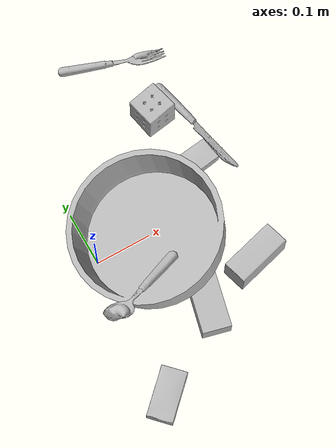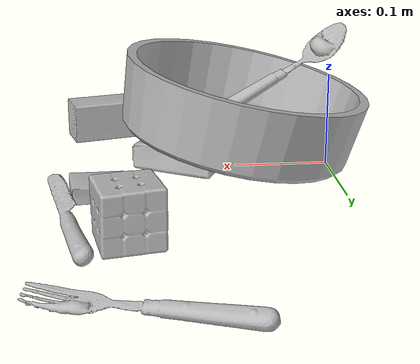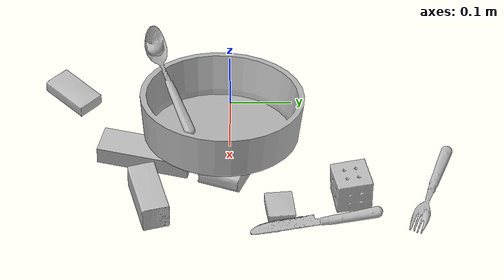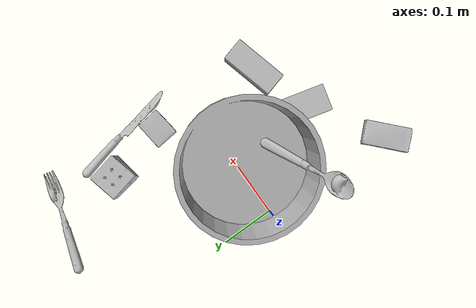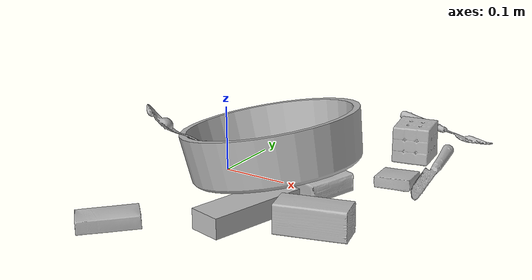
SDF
<sdf version="1.4">
  <world name="default">
    <light name="light1" type="point">
      <pose>0 0 1 0 0 0</pose>
      <diffuse>3 3 3 1</diffuse>
      <specular>3 3 3 1</specular>
    </light>
    <light name="light2" type="point">
      <pose>0 0.5 2 0 0 0</pose>
      <diffuse>1 1 1 1</diffuse>
      <specular>1 1 1 1</specular>
    </light>
    <light name="light3" type="point">
      <pose>0 0.5 2 0 0 0</pose>
      <diffuse>3 3 3 1</diffuse>
      <specular>3 3 3 1</specular>
    </light>
    <scene>
      <ambient>0.7 0.7 0.7</ambient>
    </scene>
    <model name="box11">
      <link name="link_box11">
        <collision name="default">
          <geometry>
            <mesh>
              <uri>model://jenga/collision_meshes/collision.obj</uri>
              <scale>1.0 1.0 1.0</scale>
            </mesh>
          </geometry>
          <surface>
            <friction>
              <ode>
                <mu>0.5</mu>
                <mu2>0.5</mu2>
              </ode>
            </friction>
          <contact>
        <ode>
            <max_vel>0</max_vel>
            <min_depth>0.0001</min_depth>
            <kp>1e8</kp>
        </ode>
    </contact></surface>
        </collision>
        <visual name="default">
          <geometry>
            <mesh>
              <uri>model://jenga/visual_meshes/visual.dae</uri>
              <scale>1.0 1.0 1.0</scale>
            </mesh>
          </geometry>
        </visual>
        <inertial>
          <mass>0.22063912451267242</mass>
          <pose>-2.502855807051674e-07 -0.00010250011109746993 -4.0923405322246253e-05 0.0 -7.34215461761844e-07 0.0</pose>
          <inertia>
            <ixx>6.1056206e-05</ixx>
            <iyy>0.00041371517</iyy>
            <izz>0.00044167612</izz>
            <ixy>0</ixy>
            <ixz>0</ixz>
            <iyz>0</iyz>
          </inertia>
        </inertial>
      </link>
      <pose>0.12996557354927063 -0.13508932292461395 0.015000042505562305 2.8593878795694217e-05 -9.999344559551862e-06 -1.8191364349241563</pose>
    </model>
    <model name="box12">
      <link name="link_box12">
        <collision name="default">
          <geometry>
            <mesh>
              <uri>model://sugar_box/collision_meshes/collision.obj</uri>
              <scale>0.5 0.5 0.5</scale>
            </mesh>
          </geometry>
          <surface>
            <friction>
              <ode>
                <mu>0.5</mu>
                <mu2>0.5</mu2>
              </ode>
            </friction>
          <contact>
        <ode>
            <max_vel>0</max_vel>
            <min_depth>0.0001</min_depth>
            <kp>1e8</kp>
        </ode>
    </contact></surface>
        </collision>
        <visual name="default">
          <geometry>
            <mesh>
              <uri>model://sugar_box/visual_meshes/visual.dae</uri>
              <scale>0.5 0.5 0.5</scale>
            </mesh>
          </geometry>
        </visual>
        <inertial>
          <mass>0.053318966180086136</mass>
          <pose>0.0005171863595023751 1.924554817378521e-05 -0.00018182402709499002 -0.00040462627129080113 0.001050663522124822 0.0026153787889376494</pose>
          <inertia>
            <ixx>1.1106302e-05</ixx>
            <iyy>3.5897858e-05</iyy>
            <izz>4.2974014e-05</izz>
            <ixy>0</ixy>
            <ixz>0</ixz>
            <iyz>0</iyz>
          </inertia>
        </inertial>
      </link>
      <pose>-0.012071591801941395 -0.2571260631084442 0.011399299837648869 0.0007757333180383819 -0.02343293036633046 0.7547432364117445</pose>
    </model>
    <model name="box13">
      <link name="link_box13">
        <collision name="default">
          <geometry>
            <mesh>
              <uri>model://gelatin_box/collision_meshes/collision.obj</uri>
              <scale>1.0 1.0 1.0</scale>
            </mesh>
          </geometry>
          <surface>
            <friction>
              <ode>
                <mu>0.5</mu>
                <mu2>0.5</mu2>
              </ode>
            </friction>
          <contact>
        <ode>
            <max_vel>0</max_vel>
            <min_depth>0.0001</min_depth>
            <kp>1e8</kp>
        </ode>
    </contact></surface>
        </collision>
        <visual name="default">
          <geometry>
            <mesh>
              <uri>model://gelatin_box/visual_meshes/visual.dae</uri>
              <scale>1.0 1.0 1.0</scale>
            </mesh>
          </geometry>
        </visual>
        <inertial>
          <mass>0.19111748039722443</mass>
          <pose>0.0004319618456065655 0.00011156871914863586 -0.00036403207923285663 -0.0010503719765995955 -0.004755818690324038 0.01644055947160125</pose>
          <inertia>
            <ixx>0.00013491335</ixx>
            <iyy>9.63679e-05</iyy>
            <izz>0.00020536821</izz>
            <ixy>0</ixy>
            <ixz>0</ixz>
            <iyz>0</iyz>
          </inertia>
        </inertial>
      </link>
      <pose>0.1579427868127823 -0.002071450464427471 0.0169915072619915 -0.036466479614958705 -0.05294050897735819 1.1579894345604433</pose>
    </model>
    <model name="box21">
      <link name="link_box21">
        <collision name="default">
          <geometry>
            <mesh>
              <uri>model://pudding_box/collision_meshes/collision.obj</uri>
              <scale>0.5 0.5 0.5</scale>
            </mesh>
          </geometry>
          <surface>
            <friction>
              <ode>
                <mu>0.5</mu>
                <mu2>0.5</mu2>
              </ode>
            </friction>
          <contact>
        <ode>
            <max_vel>0</max_vel>
            <min_depth>0.0001</min_depth>
            <kp>1e8</kp>
        </ode>
    </contact></surface>
        </collision>
        <visual name="default">
          <geometry>
            <mesh>
              <uri>model://pudding_box/visual_meshes/visual.dae</uri>
              <scale>0.5 0.5 0.5</scale>
            </mesh>
          </geometry>
        </visual>
        <inertial>
          <mass>0.037507444620132446</mass>
          <pose>0.00024474109522998333 0.0004033942532259971 -0.0002594413817860186 0.00521310221980129 -0.006603800139852783 0.020079832606434308</pose>
          <inertia>
            <ixx>1.0600058e-05</ixx>
            <iyy>7.131795e-06</iyy>
            <izz>1.5653754e-05</izz>
            <ixy>0</ixy>
            <ixz>0</ixz>
            <iyz>0</iyz>
          </inertia>
        </inertial>
      </link>
      <pose>0.24592351913452148 0.0798671543598175 0.009862905368208885 0.022348653334110378 -0.01139170240858791 -1.4515716307362332</pose>
    </model>
    <model name="box22">
      <link name="link_box22">
        <collision name="default">
          <geometry>
            <mesh>
              <uri>model://rubiks_cube/collision_meshes/collision.obj</uri>
              <scale>1.0 1.0 1.0</scale>
            </mesh>
          </geometry>
          <surface>
            <friction>
              <ode>
                <mu>0.5</mu>
                <mu2>0.5</mu2>
              </ode>
            </friction>
          <contact>
        <ode>
            <max_vel>0</max_vel>
            <min_depth>0.0001</min_depth>
            <kp>1e8</kp>
        </ode>
    </contact></surface>
        </collision>
        <visual name="default">
          <geometry>
            <mesh>
              <uri>model://rubiks_cube/visual_meshes/visual.dae</uri>
              <scale>1.0 1.0 1.0</scale>
            </mesh>
          </geometry>
        </visual>
        <inertial>
          <mass>0.19412381947040558</mass>
          <pose>2.6721041649580002e-05 5.2569666877388954e-05 -7.264316082000732e-06 -0.05467327462967597 -0.09814157667114887 -0.034454893398498845</pose>
          <inertia>
            <ixx>0.000107266445</ixx>
            <iyy>0.0001067662</iyy>
            <izz>0.00010815532</izz>
            <ixy>0</ixy>
            <ixz>0</ixz>
            <iyz>0</iyz>
          </inertia>
        </inertial>
      </link>
      <pose>0.21700607240200043 0.1931634098291397 0.028678955510258675 -3.886910463850063e-06 -1.857926431790951e-06 0.20956198559707814</pose>
    </model>
    <model name="box23">
      <link name="link_box23">
        <collision name="default">
          <geometry>
            <mesh>
              <uri>model://wood_block/collision_meshes/collision.obj</uri>
              <scale>0.5 0.5 0.5</scale>
            </mesh>
          </geometry>
          <surface>
            <friction>
              <ode>
                <mu>0.5</mu>
                <mu2>0.5</mu2>
              </ode>
            </friction>
          <contact>
        <ode>
            <max_vel>0</max_vel>
            <min_depth>0.0001</min_depth>
            <kp>1e8</kp>
        </ode>
    </contact></surface>
        </collision>
        <visual name="default">
          <geometry>
            <mesh>
              <uri>model://wood_block/visual_meshes/visual.dae</uri>
              <scale>0.5 0.5 0.5</scale>
            </mesh>
          </geometry>
        </visual>
        <inertial>
          <mass>0.12021861970424652</mass>
          <pose>-2.9066577553749084e-06 -0.000285404734313488 0.00013204291462898254 -0.05220783851692058 -0.005192695246339916 -0.006861377900732038</pose>
          <inertia>
            <ixx>4.0217674e-05</ixx>
            <iyy>0.00012704768</iyy>
            <izz>0.00012657243</izz>
            <ixy>0</ixy>
            <ixz>0</ixz>
            <iyz>0</iyz>
          </inertia>
        </inertial>
      </link>
      <pose>0.2330896556377411 -0.12844318151474 0.022629259154200554 -0.005208544715224334 0.005718696540982294 0.2625965087587659</pose>
    </model>
    <model name="plate1">
      <link name="link_plate1">
        <collision name="default">
          <geometry>
            <mesh>
              <uri>model://pan_tefal/collision_meshes/collision.obj</uri>
              <scale>1.0 1.0 1.0</scale>
            </mesh>
          </geometry>
          <surface>
            <friction>
              <ode>
                <mu>0.5</mu>
                <mu2>0.5</mu2>
              </ode>
            </friction>
          <contact>
        <ode>
            <max_vel>0</max_vel>
            <min_depth>0.0001</min_depth>
            <kp>1e8</kp>
        </ode>
    </contact></surface>
        </collision>
        <visual name="default">
          <geometry>
            <mesh>
              <uri>model://pan_tefal/visual_meshes/visual.dae</uri>
              <scale>1.0 1.0 1.0</scale>
            </mesh>
          </geometry>
        </visual>
        <inertial>
          <mass>1.1174349784851074</mass>
          <pose>-0.0001800186582840979 3.278696021880023e-05 -0.00851493701338768 0.0008190242272949328 -0.00033013996347192336 -0.33186114310704434</pose>
          <inertia>
            <ixx>0.0077136005</ixx>
            <iyy>0.0077633304</iyy>
            <izz>0.014199255</izz>
            <ixy>0</ixy>
            <ixz>0</ixz>
            <iyz>0</iyz>
          </inertia>
        </inertial>
      </link>
      <pose>0.09299737215042114 -0.013111480511724949 0.06277908384799957 0.05662354699729594 0.2047178922148448 -3.0104606634212607</pose>
    </model>
    <model name="silverware1">
      <link name="link_silverware1">
        <collision name="default">
          <geometry>
            <mesh>
              <uri>model://spoon/collision_meshes/collision.obj</uri>
              <scale>1.0 1.0 1.0</scale>
            </mesh>
          </geometry>
          <surface>
            <friction>
              <ode>
                <mu>0.5</mu>
                <mu2>0.5</mu2>
              </ode>
            </friction>
          <contact>
        <ode>
            <max_vel>0</max_vel>
            <min_depth>0.0001</min_depth>
            <kp>1e8</kp>
        </ode>
    </contact></surface>
        </collision>
        <visual name="default">
          <geometry>
            <mesh>
              <uri>model://spoon/visual_meshes/visual.dae</uri>
              <scale>1.0 1.0 1.0</scale>
            </mesh>
          </geometry>
        </visual>
        <inertial>
          <mass>0.03790392354130745</mass>
          <pose>-0.005526311695575714 -0.0016034170985221863 -0.0007271655485965312 0.03521845899657386 -0.039065840459698326 0.006150612465639116</pose>
          <inertia>
            <ixx>2.1082776e-06</ixx>
            <iyy>0.00014422317</iyy>
            <izz>0.00014526285</izz>
            <ixy>0</ixy>
            <ixz>0</ixz>
            <iyz>0</iyz>
          </inertia>
        </inertial>
      </link>
      <pose>0.034274809062480927 -0.09879766404628754 0.08164569735527039 0.31598304468466765 -0.3902843003331303 -2.7288630224886474</pose>
    </model>
    <model name="silverware2">
      <link name="link_silverware2">
        <collision name="default">
          <geometry>
            <mesh>
              <uri>model://fork/collision_meshes/collision.obj</uri>
              <scale>1.0 1.0 1.0</scale>
            </mesh>
          </geometry>
          <surface>
            <friction>
              <ode>
                <mu>0.5</mu>
                <mu2>0.5</mu2>
              </ode>
            </friction>
          <contact>
        <ode>
            <max_vel>0</max_vel>
            <min_depth>0.0001</min_depth>
            <kp>1e8</kp>
        </ode>
    </contact></surface>
        </collision>
        <visual name="default">
          <geometry>
            <mesh>
              <uri>model://fork/visual_meshes/visual.dae</uri>
              <scale>1.0 1.0 1.0</scale>
            </mesh>
          </geometry>
        </visual>
        <inertial>
          <mass>0.029004188254475594</mass>
          <pose>-0.02957005612552166 0.0004658824182115495 0.00032188621116802096 -0.013551880215526314 -0.010977843078655252 0.014453906566097012</pose>
          <inertia>
            <ixx>1.0167608e-06</ixx>
            <iyy>7.572158e-05</iyy>
            <izz>7.617634e-05</izz>
            <ixy>0</ixy>
            <ixz>0</ixz>
            <iyz>0</iyz>
          </inertia>
        </inertial>
      </link>
      <pose>0.20447668433189392 0.32150769233703613 0.005747184623032808 -0.1910045555094969 0.024088182711441596 -0.32356651585626084</pose>
    </model>
    <model name="silverware3">
      <link name="link_silverware3">
        <collision name="default">
          <geometry>
            <mesh>
              <uri>model://knife/collision_meshes/collision.obj</uri>
              <scale>1.0 1.0 1.0</scale>
            </mesh>
          </geometry>
          <surface>
            <friction>
              <ode>
                <mu>0.5</mu>
                <mu2>0.5</mu2>
              </ode>
            </friction>
          <contact>
        <ode>
            <max_vel>0</max_vel>
            <min_depth>0.0001</min_depth>
            <kp>1e8</kp>
        </ode>
    </contact></surface>
        </collision>
        <visual name="default">
          <geometry>
            <mesh>
              <uri>model://knife/visual_meshes/visual.dae</uri>
              <scale>1.0 1.0 1.0</scale>
            </mesh>
          </geometry>
        </visual>
        <inertial>
          <mass>0.015800314024090767</mass>
          <pose>-0.023785250261425972 0.0015275126788765192 5.0620288675418124e-05 0.07305498599936577 0.01724841842216061 -0.0074098211805850795</pose>
          <inertia>
            <ixx>4.48477e-07</ixx>
            <iyy>6.0702252e-05</iyy>
            <izz>6.0846694e-05</izz>
            <ixy>0</ixy>
            <ixz>0</ixz>
            <iyz>0</iyz>
          </inertia>
        </inertial>
      </link>
      <pose>0.27317994832992554 0.1373135894536972 0.008559809066355228 -0.5986950421154387 0.0023353254616399043 -1.3697299246059722</pose>
    </model>
  <physics type="ode">
      <max_contacts>50</max_contacts>
      <ode>
        <solver>
          <type>quick</type>
          <iters>75</iters>
        </solver>
        <constraints>
          <contact_max_correcting_vel>0</contact_max_correcting_vel>
          <contact_surface_layer>0</contact_surface_layer>
        </constraints>
      </ode>
    </physics></world>
</sdf>
